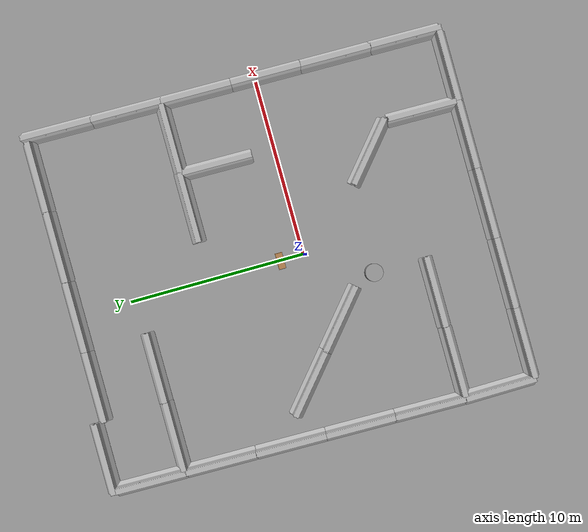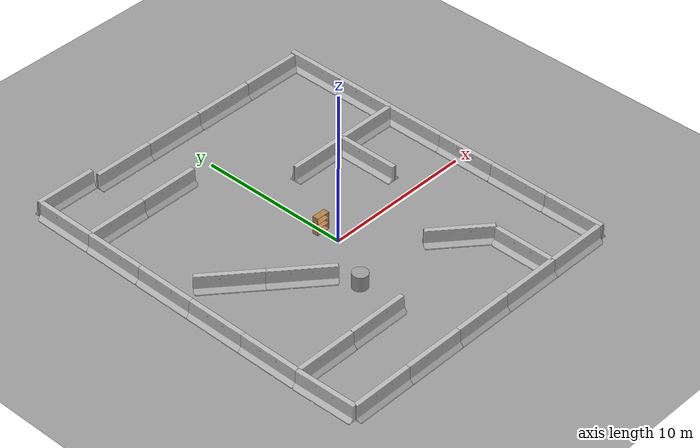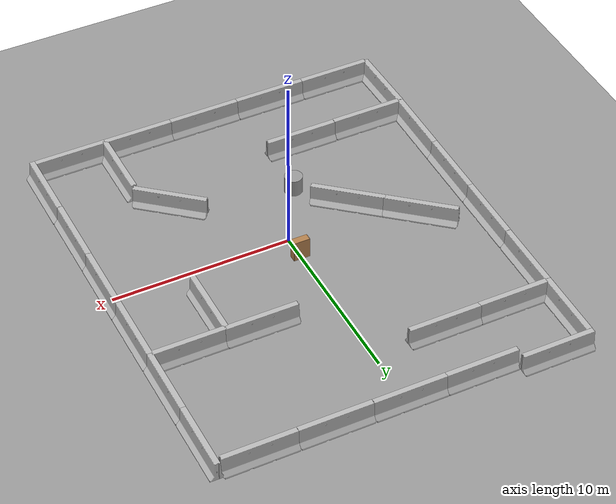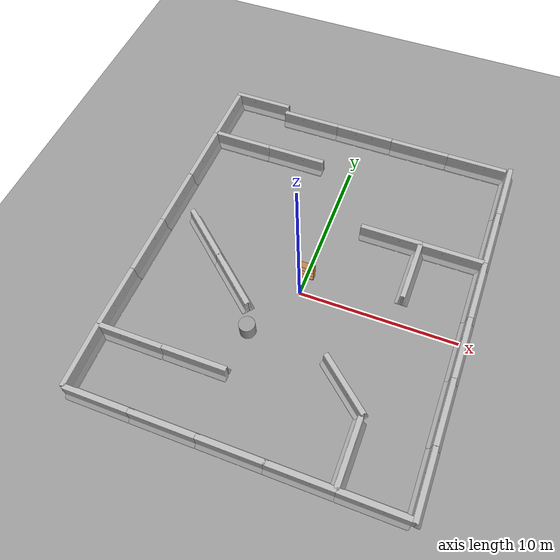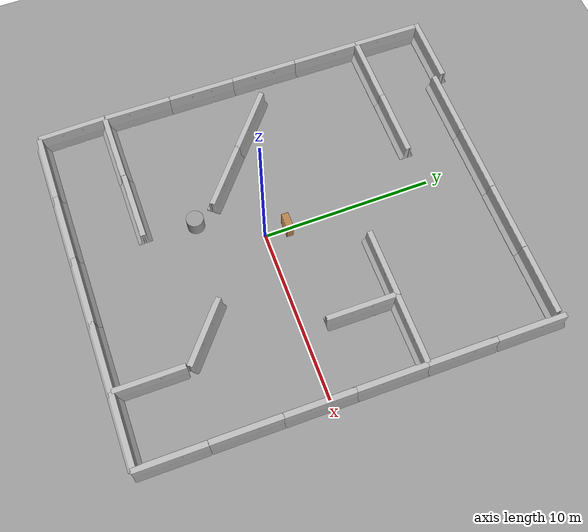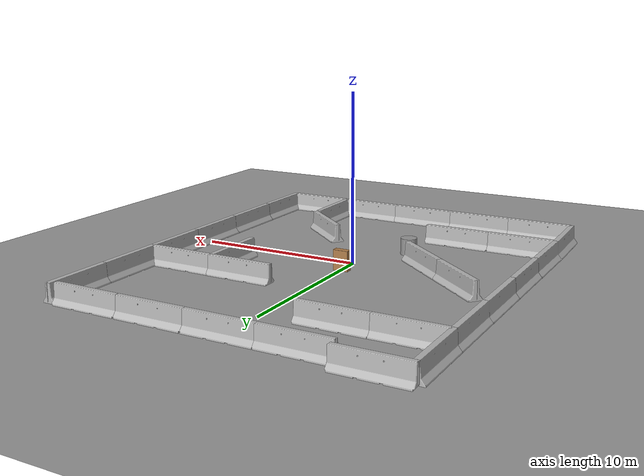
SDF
<sdf version="1.6">
 <world name="default">
  <light name="sun" type="directional">
   <pose>0 0 10 0 -0 0</pose>
   <diffuse>0.8 0.8 0.8 1</diffuse>
   <specular>0.2 0.2 0.2 1</specular>
   <attenuation>
    <range>1000</range>
    <constant>0.9</constant>
    <linear>0.01</linear>
    <quadratic>0.001</quadratic>
   </attenuation>
   <direction>0.5 0.1 -0.9</direction>
  </light>
  <scene><ambient>0.4 0.4 0.4 1</ambient><background>0.7 0.7 0.7 1</background><shadows>1</shadows></scene>
  <physics name="default_physics" default="0" type="ode">
   <max_step_size>0.01</max_step_size>
   <real_time_factor>1</real_time_factor>
   <real_time_update_rate>100</real_time_update_rate>
  </physics>
  <model name="bookshelf">
   <static>1</static>
   <link name="link">
    <inertial><mass>1</mass></inertial>
    <collision name="back">
     <pose>0 0.005 0.6 0 -0 0</pose>
     <geometry><box><size>0.9 0.01 1.2</size></box></geometry>
    </collision>
    <visual name="visual1">
     <pose>0 0.005 0.6 0 -0 0</pose>
     <geometry><box><size>0.9 0.01 1.2</size></box></geometry>
     <material>
      <script><uri>file://media/materials/scripts/gazebo.material</uri><name>Gazebo/Wood</name></script>
     </material>
    </visual>
    <collision name="left_side">
     <pose>0.45 -0.195 0.6 0 -0 0</pose>
     <geometry><box><size>0.02 0.4 1.2</size></box></geometry>
    </collision>
    <visual name="visual2">
     <pose>0.45 -0.195 0.6 0 -0 0</pose>
     <geometry><box><size>0.02 0.4 1.2</size></box></geometry>
     <material>
      <script><uri>file://media/materials/scripts/gazebo.material</uri><name>Gazebo/Wood</name></script>
     </material>
    </visual>
    <collision name="right_side">
     <pose>-0.45 -0.195 0.6 0 -0 0</pose>
     <geometry><box><size>0.02 0.4 1.2</size></box></geometry>
    </collision>
    <visual name="visual3">
     <pose>-0.45 -0.195 0.6 0 -0 0</pose>
     <geometry><box><size>0.02 0.4 1.2</size></box></geometry>
     <material>
      <script><uri>file://media/materials/scripts/gazebo.material</uri><name>Gazebo/Wood</name></script>
     </material>
    </visual>
    <collision name="bottom">
     <pose>0 -0.195 0.03 0 -0 0</pose>
     <geometry><box><size>0.88 0.4 0.06</size></box></geometry>
    </collision>
    <visual name="visual4">
     <pose>0 -0.195 0.03 0 -0 0</pose>
     <geometry><box><size>0.88 0.4 0.06</size></box></geometry>
     <material>
      <script><uri>file://media/materials/scripts/gazebo.material</uri><name>Gazebo/Wood</name></script>
     </material>
    </visual>
    <collision name="top">
     <pose>0 -0.195 1.19 0 -0 0</pose>
     <geometry><box><size>0.88 0.4 0.02</size></box></geometry>
    </collision>
    <visual name="visual5">
     <pose>0 -0.195 1.19 0 -0 0</pose>
     <geometry><box><size>0.88 0.4 0.02</size></box></geometry>
     <material>
      <script><uri>file://media/materials/scripts/gazebo.material</uri><name>Gazebo/Wood</name></script>
     </material>
    </visual>
    <collision name="low_shelf">
     <pose>0 -0.195 0.43 0 -0 0</pose>
     <geometry><box><size>0.88 0.4 0.02</size></box></geometry>
    </collision>
    <visual name="visual6">
     <pose>0 -0.195 0.43 0 -0 0</pose>
     <geometry><box><size>0.88 0.4 0.02</size></box></geometry>
     <material>
      <script><uri>file://media/materials/scripts/gazebo.material</uri><name>Gazebo/Wood</name></script>
     </material>
    </visual>
    <collision name="high_shelf">
     <pose>0 -0.195 0.8 0 -0 0</pose>
     <geometry><box><size>0.88 0.4 0.02</size></box></geometry>
    </collision>
    <visual name="visual7">
     <pose>0 -0.195 0.8 0 -0 0</pose>
     <geometry><box><size>0.88 0.4 0.02</size></box></geometry>
     <material>
      <script><uri>file://media/materials/scripts/gazebo.material</uri><name>Gazebo/Wood</name></script>
     </material>
    </visual>
    <velocity_decay><linear>0</linear><angular>0</angular></velocity_decay>
   </link>
   <pose>0 1.53026 0 0 -0 0</pose>
  </model>
  <model name="jersey_barrier">
   <static>1</static>
   <link name="link">
    <visual name="visual">
     <geometry>
      <mesh><uri>model://jersey_barrier/meshes/jersey_barrier.dae</uri><scale>1 1 1</scale></mesh>
     </geometry>
    </visual>
    <collision name="upright">
     <pose>0 0 0.5715 0 -0 0</pose>
     <geometry><box><size>4.06542 0.3063 1.143</size></box></geometry>
    </collision>
    <collision name="base">
     <pose>0 0 0.032258 0 -0 0</pose>
     <geometry><box><size>4.06542 0.8107 0.064516</size></box></geometry>
    </collision>
    <collision name="base2">
     <pose>0 0 0.1 0 -0 0</pose>
     <geometry><box><size>4.06542 0.65 0.1</size></box></geometry>
    </collision>
    <collision name="base3">
     <pose>0 0 0.2 0 -0 0</pose>
     <geometry><box><size>4.06542 0.5 0.1</size></box></geometry>
    </collision>
    <collision name="left-angle">
     <pose>0 -0.224 0.2401 0.9 -0 0</pose>
     <geometry><box><size>4.06542 0.5 0.064516</size></box></geometry>
    </collision>
    <collision name="right-angle">
     <pose>0 0.224 0.2401 -0.9 0 0</pose>
     <geometry><box><size>4.06542 0.5 0.064516</size></box></geometry>
    </collision>
    <velocity_decay><linear>0</linear><angular>0</angular></velocity_decay>
   </link>
   <pose>-4 -1 0 0 0 -0.7</pose>
  </model>
  <model name="ground_plane_0">
   <static>1</static>
   <link name="link">
    <collision name="collision">
     <geometry><plane><normal>0 0 1</normal><size>100 100</size></plane></geometry>
     <surface><friction><ode><mu>100</mu><mu2>50</mu2></ode></friction></surface>
    </collision>
    <visual name="visual">
     <cast_shadows>0</cast_shadows>
     <geometry><plane><normal>0 0 1</normal><size>100 100</size></plane></geometry>
     <material>
      <script><uri>file://media/materials/scripts/gazebo.material</uri><name>Gazebo/Grey</name></script>
     </material>
    </visual>
    <velocity_decay><linear>0</linear><angular>0</angular></velocity_decay>
   </link>
   <pose>0.497681 0 0 0 -0 0</pose>
  </model>
  <model name="unit_cylinder_1">
   <pose>-2 -3.4888 0.49912 0 -0 0</pose>
   <link name="link">
    <inertial>
     <mass>1</mass>
     <inertia><ixx>1</ixx><ixy>0</ixy><ixz>0</ixz><iyy>1</iyy><iyz>0</iyz><izz>1</izz></inertia>
    </inertial>
    <collision name="collision">
     <geometry><cylinder><radius>0.5</radius><length>1</length></cylinder></geometry>
    </collision>
    <visual name="visual">
     <geometry><cylinder><radius>0.5</radius><length>1</length></cylinder></geometry>
     <material>
      <script><uri>file://media/materials/scripts/gazebo.material</uri><name>Gazebo/Grey</name></script>
     </material>
    </visual>
    <velocity_decay><linear>0</linear><angular>0</angular></velocity_decay>
   </link>
   <static>0</static>
  </model>
  <gravity>0 0 -9.8</gravity>
  <magnetic_field>6e-06 2.3e-05 -4.2e-05</magnetic_field>
  <atmosphere type="adiabatic"/>
  <spherical_coordinates>
   <surface_model>EARTH_WGS84</surface_model>
   <latitude_deg>0</latitude_deg>
   <longitude_deg>0</longitude_deg>
   <elevation>0</elevation>
   <heading_deg>0</heading_deg>
  </spherical_coordinates>
  <model name="jersey_barrier_0">
   <static>1</static>
   <link name="link">
    <visual name="visual">
     <geometry>
      <mesh><uri>model://jersey_barrier/meshes/jersey_barrier.dae</uri><scale>1 1 1</scale></mesh>
     </geometry>
    </visual>
    <collision name="upright">
     <pose>0 0 0.5715 0 -0 0</pose>
     <geometry><box><size>4.06542 0.3063 1.143</size></box></geometry>
    </collision>
    <collision name="base">
     <pose>0 0 0.032258 0 -0 0</pose>
     <geometry><box><size>4.06542 0.8107 0.064516</size></box></geometry>
    </collision>
    <collision name="base2">
     <pose>0 0 0.1 0 -0 0</pose>
     <geometry><box><size>4.06542 0.65 0.1</size></box></geometry>
    </collision>
    <collision name="base3">
     <pose>0 0 0.2 0 -0 0</pose>
     <geometry><box><size>4.06542 0.5 0.1</size></box></geometry>
    </collision>
    <collision name="left-angle">
     <pose>0 -0.224 0.2401 0.9 -0 0</pose>
     <geometry><box><size>4.06542 0.5 0.064516</size></box></geometry>
    </collision>
    <collision name="right-angle">
     <pose>0 0.224 0.2401 -0.9 0 0</pose>
     <geometry><box><size>4.06542 0.5 0.064516</size></box></geometry>
    </collision>
   </link>
   <pose>0.044913 -10.4917 0 0 -0 0</pose>
  </model>
  <model name="jersey_barrier_1">
   <static>1</static>
   <link name="link">
    <visual name="visual">
     <geometry>
      <mesh><uri>model://jersey_barrier/meshes/jersey_barrier.dae</uri><scale>1 1 1</scale></mesh>
     </geometry>
    </visual>
    <collision name="upright">
     <pose>0 0 0.5715 0 -0 0</pose>
     <geometry><box><size>4.06542 0.3063 1.143</size></box></geometry>
    </collision>
    <collision name="base">
     <pose>0 0 0.032258 0 -0 0</pose>
     <geometry><box><size>4.06542 0.8107 0.064516</size></box></geometry>
    </collision>
    <collision name="base2">
     <pose>0 0 0.1 0 -0 0</pose>
     <geometry><box><size>4.06542 0.65 0.1</size></box></geometry>
    </collision>
    <collision name="base3">
     <pose>0 0 0.2 0 -0 0</pose>
     <geometry><box><size>4.06542 0.5 0.1</size></box></geometry>
    </collision>
    <collision name="left-angle">
     <pose>0 -0.224 0.2401 0.9 -0 0</pose>
     <geometry><box><size>4.06542 0.5 0.064516</size></box></geometry>
    </collision>
    <collision name="right-angle">
     <pose>0 0.224 0.2401 -0.9 0 0</pose>
     <geometry><box><size>4.06542 0.5 0.064516</size></box></geometry>
    </collision>
   </link>
   <pose>3.93437 -10.4926 0 0 -0 0</pose>
  </model>
  <model name="jersey_barrier_1_clone">
   <static>1</static>
   <link name="link">
    <visual name="visual">
     <geometry>
      <mesh><uri>model://jersey_barrier/meshes/jersey_barrier.dae</uri><scale>1 1 1</scale></mesh>
     </geometry>
    </visual>
    <collision name="upright">
     <pose>0 0 0.5715 0 -0 0</pose>
     <geometry><box><size>4.06542 0.3063 1.143</size></box></geometry>
    </collision>
    <collision name="base">
     <pose>0 0 0.032258 0 -0 0</pose>
     <geometry><box><size>4.06542 0.8107 0.064516</size></box></geometry>
    </collision>
    <collision name="base2">
     <pose>0 0 0.1 0 -0 0</pose>
     <geometry><box><size>4.06542 0.65 0.1</size></box></geometry>
    </collision>
    <collision name="base3">
     <pose>0 0 0.2 0 -0 0</pose>
     <geometry><box><size>4.06542 0.5 0.1</size></box></geometry>
    </collision>
    <collision name="left-angle">
     <pose>0 -0.224 0.2401 0.9 -0 0</pose>
     <geometry><box><size>4.06542 0.5 0.064516</size></box></geometry>
    </collision>
    <collision name="right-angle">
     <pose>0 0.224 0.2401 -0.9 0 0</pose>
     <geometry><box><size>4.06542 0.5 0.064516</size></box></geometry>
    </collision>
   </link>
   <pose>7.93297 -10.4987 0 0 -0 0</pose>
  </model>
  <model name="jersey_barrier_1_clone_0">
   <static>1</static>
   <link name="link">
    <visual name="visual">
     <geometry>
      <mesh><uri>model://jersey_barrier/meshes/jersey_barrier.dae</uri><scale>1 1 1</scale></mesh>
     </geometry>
    </visual>
    <collision name="upright">
     <pose>0 0 0.5715 0 -0 0</pose>
     <geometry><box><size>4.06542 0.3063 1.143</size></box></geometry>
    </collision>
    <collision name="base">
     <pose>0 0 0.032258 0 -0 0</pose>
     <geometry><box><size>4.06542 0.8107 0.064516</size></box></geometry>
    </collision>
    <collision name="base2">
     <pose>0 0 0.1 0 -0 0</pose>
     <geometry><box><size>4.06542 0.65 0.1</size></box></geometry>
    </collision>
    <collision name="base3">
     <pose>0 0 0.2 0 -0 0</pose>
     <geometry><box><size>4.06542 0.5 0.1</size></box></geometry>
    </collision>
    <collision name="left-angle">
     <pose>0 -0.224 0.2401 0.9 -0 0</pose>
     <geometry><box><size>4.06542 0.5 0.064516</size></box></geometry>
    </collision>
    <collision name="right-angle">
     <pose>0 0.224 0.2401 -0.9 0 0</pose>
     <geometry><box><size>4.06542 0.5 0.064516</size></box></geometry>
    </collision>
   </link>
   <pose>-3.96775 -10.4974 0 0 -0 0</pose>
  </model>
  <model name="jersey_barrier_1_clone_1">
   <static>1</static>
   <link name="link">
    <visual name="visual">
     <geometry>
      <mesh><uri>model://jersey_barrier/meshes/jersey_barrier.dae</uri><scale>1 1 1</scale></mesh>
     </geometry>
    </visual>
    <collision name="upright">
     <pose>0 0 0.5715 0 -0 0</pose>
     <geometry><box><size>4.06542 0.3063 1.143</size></box></geometry>
    </collision>
    <collision name="base">
     <pose>0 0 0.032258 0 -0 0</pose>
     <geometry><box><size>4.06542 0.8107 0.064516</size></box></geometry>
    </collision>
    <collision name="base2">
     <pose>0 0 0.1 0 -0 0</pose>
     <geometry><box><size>4.06542 0.65 0.1</size></box></geometry>
    </collision>
    <collision name="base3">
     <pose>0 0 0.2 0 -0 0</pose>
     <geometry><box><size>4.06542 0.5 0.1</size></box></geometry>
    </collision>
    <collision name="left-angle">
     <pose>0 -0.224 0.2401 0.9 -0 0</pose>
     <geometry><box><size>4.06542 0.5 0.064516</size></box></geometry>
    </collision>
    <collision name="right-angle">
     <pose>0 0.224 0.2401 -0.9 0 0</pose>
     <geometry><box><size>4.06542 0.5 0.064516</size></box></geometry>
    </collision>
   </link>
   <pose>-7.97176 -10.4956 0 0 -0 0</pose>
  </model>
  <model name="jersey_barrier_1_clone_2">
   <static>1</static>
   <link name="link">
    <visual name="visual">
     <geometry>
      <mesh><uri>model://jersey_barrier/meshes/jersey_barrier.dae</uri><scale>1 1 1</scale></mesh>
     </geometry>
    </visual>
    <collision name="upright">
     <pose>0 0 0.5715 0 -0 0</pose>
     <geometry><box><size>4.06542 0.3063 1.143</size></box></geometry>
    </collision>
    <collision name="base">
     <pose>0 0 0.032258 0 -0 0</pose>
     <geometry><box><size>4.06542 0.8107 0.064516</size></box></geometry>
    </collision>
    <collision name="base2">
     <pose>0 0 0.1 0 -0 0</pose>
     <geometry><box><size>4.06542 0.65 0.1</size></box></geometry>
    </collision>
    <collision name="base3">
     <pose>0 0 0.2 0 -0 0</pose>
     <geometry><box><size>4.06542 0.5 0.1</size></box></geometry>
    </collision>
    <collision name="left-angle">
     <pose>0 -0.224 0.2401 0.9 -0 0</pose>
     <geometry><box><size>4.06542 0.5 0.064516</size></box></geometry>
    </collision>
    <collision name="right-angle">
     <pose>0 0.224 0.2401 -0.9 0 0</pose>
     <geometry><box><size>4.06542 0.5 0.064516</size></box></geometry>
    </collision>
   </link>
   <pose>-10.0738 -8.515 0 0 0 -1.55445</pose>
  </model>
  <model name="jersey_barrier_1_clone_2_clone">
   <static>1</static>
   <link name="link">
    <visual name="visual">
     <geometry>
      <mesh><uri>model://jersey_barrier/meshes/jersey_barrier.dae</uri><scale>1 1 1</scale></mesh>
     </geometry>
    </visual>
    <collision name="upright">
     <pose>0 0 0.5715 0 -0 0</pose>
     <geometry><box><size>4.06542 0.3063 1.143</size></box></geometry>
    </collision>
    <collision name="base">
     <pose>0 0 0.032258 0 -0 0</pose>
     <geometry><box><size>4.06542 0.8107 0.064516</size></box></geometry>
    </collision>
    <collision name="base2">
     <pose>0 0 0.1 0 -0 0</pose>
     <geometry><box><size>4.06542 0.65 0.1</size></box></geometry>
    </collision>
    <collision name="base3">
     <pose>0 0 0.2 0 -0 0</pose>
     <geometry><box><size>4.06542 0.5 0.1</size></box></geometry>
    </collision>
    <collision name="left-angle">
     <pose>0 -0.224 0.2401 0.9 -0 0</pose>
     <geometry><box><size>4.06542 0.5 0.064516</size></box></geometry>
    </collision>
    <collision name="right-angle">
     <pose>0 0.224 0.2401 -0.9 0 0</pose>
     <geometry><box><size>4.06542 0.5 0.064516</size></box></geometry>
    </collision>
   </link>
   <pose>-10.0721 -4.47903 0 0 0 -1.5814</pose>
  </model>
  <model name="jersey_barrier_1_clone_2_clone_0">
   <static>1</static>
   <link name="link">
    <visual name="visual">
     <geometry>
      <mesh><uri>model://jersey_barrier/meshes/jersey_barrier.dae</uri><scale>1 1 1</scale></mesh>
     </geometry>
    </visual>
    <collision name="upright">
     <pose>0 0 0.5715 0 -0 0</pose>
     <geometry><box><size>4.06542 0.3063 1.143</size></box></geometry>
    </collision>
    <collision name="base">
     <pose>0 0 0.032258 0 -0 0</pose>
     <geometry><box><size>4.06542 0.8107 0.064516</size></box></geometry>
    </collision>
    <collision name="base2">
     <pose>0 0 0.1 0 -0 0</pose>
     <geometry><box><size>4.06542 0.65 0.1</size></box></geometry>
    </collision>
    <collision name="base3">
     <pose>0 0 0.2 0 -0 0</pose>
     <geometry><box><size>4.06542 0.5 0.1</size></box></geometry>
    </collision>
    <collision name="left-angle">
     <pose>0 -0.224 0.2401 0.9 -0 0</pose>
     <geometry><box><size>4.06542 0.5 0.064516</size></box></geometry>
    </collision>
    <collision name="right-angle">
     <pose>0 0.224 0.2401 -0.9 0 0</pose>
     <geometry><box><size>4.06542 0.5 0.064516</size></box></geometry>
    </collision>
   </link>
   <pose>-10.0264 -0.525115 0 0 0 -1.5814</pose>
  </model>
  <model name="jersey_barrier_1_clone_2_clone_1">
   <static>1</static>
   <link name="link">
    <visual name="visual">
     <geometry>
      <mesh><uri>model://jersey_barrier/meshes/jersey_barrier.dae</uri><scale>1 1 1</scale></mesh>
     </geometry>
    </visual>
    <collision name="upright">
     <pose>0 0 0.5715 0 -0 0</pose>
     <geometry><box><size>4.06542 0.3063 1.143</size></box></geometry>
    </collision>
    <collision name="base">
     <pose>0 0 0.032258 0 -0 0</pose>
     <geometry><box><size>4.06542 0.8107 0.064516</size></box></geometry>
    </collision>
    <collision name="base2">
     <pose>0 0 0.1 0 -0 0</pose>
     <geometry><box><size>4.06542 0.65 0.1</size></box></geometry>
    </collision>
    <collision name="base3">
     <pose>0 0 0.2 0 -0 0</pose>
     <geometry><box><size>4.06542 0.5 0.1</size></box></geometry>
    </collision>
    <collision name="left-angle">
     <pose>0 -0.224 0.2401 0.9 -0 0</pose>
     <geometry><box><size>4.06542 0.5 0.064516</size></box></geometry>
    </collision>
    <collision name="right-angle">
     <pose>0 0.224 0.2401 -0.9 0 0</pose>
     <geometry><box><size>4.06542 0.5 0.064516</size></box></geometry>
    </collision>
   </link>
   <pose>-9.98287 3.46467 0 0 0 -1.5814</pose>
  </model>
  <model name="jersey_barrier_1_clone_2_clone_2">
   <static>1</static>
   <link name="link">
    <visual name="visual">
     <geometry>
      <mesh><uri>model://jersey_barrier/meshes/jersey_barrier.dae</uri><scale>1 1 1</scale></mesh>
     </geometry>
    </visual>
    <collision name="upright">
     <pose>0 0 0.5715 0 -0 0</pose>
     <geometry><box><size>4.06542 0.3063 1.143</size></box></geometry>
    </collision>
    <collision name="base">
     <pose>0 0 0.032258 0 -0 0</pose>
     <geometry><box><size>4.06542 0.8107 0.064516</size></box></geometry>
    </collision>
    <collision name="base2">
     <pose>0 0 0.1 0 -0 0</pose>
     <geometry><box><size>4.06542 0.65 0.1</size></box></geometry>
    </collision>
    <collision name="base3">
     <pose>0 0 0.2 0 -0 0</pose>
     <geometry><box><size>4.06542 0.5 0.1</size></box></geometry>
    </collision>
    <collision name="left-angle">
     <pose>0 -0.224 0.2401 0.9 -0 0</pose>
     <geometry><box><size>4.06542 0.5 0.064516</size></box></geometry>
    </collision>
    <collision name="right-angle">
     <pose>0 0.224 0.2401 -0.9 0 0</pose>
     <geometry><box><size>4.06542 0.5 0.064516</size></box></geometry>
    </collision>
   </link>
   <pose>-9.93332 7.49122 0 0 0 -1.5814</pose>
  </model>
  <model name="jersey_barrier_1_clone_2_clone_3">
   <static>1</static>
   <link name="link">
    <visual name="visual">
     <geometry>
      <mesh><uri>model://jersey_barrier/meshes/jersey_barrier.dae</uri><scale>1 1 1</scale></mesh>
     </geometry>
    </visual>
    <collision name="upright">
     <pose>0 0 0.5715 0 -0 0</pose>
     <geometry><box><size>4.06542 0.3063 1.143</size></box></geometry>
    </collision>
    <collision name="base">
     <pose>0 0 0.032258 0 -0 0</pose>
     <geometry><box><size>4.06542 0.8107 0.064516</size></box></geometry>
    </collision>
    <collision name="base2">
     <pose>0 0 0.1 0 -0 0</pose>
     <geometry><box><size>4.06542 0.65 0.1</size></box></geometry>
    </collision>
    <collision name="base3">
     <pose>0 0 0.2 0 -0 0</pose>
     <geometry><box><size>4.06542 0.5 0.1</size></box></geometry>
    </collision>
    <collision name="left-angle">
     <pose>0 -0.224 0.2401 0.9 -0 0</pose>
     <geometry><box><size>4.06542 0.5 0.064516</size></box></geometry>
    </collision>
    <collision name="right-angle">
     <pose>0 0.224 0.2401 -0.9 0 0</pose>
     <geometry><box><size>4.06542 0.5 0.064516</size></box></geometry>
    </collision>
   </link>
   <pose>-9.89225 11.5087 0 0 0 -1.5814</pose>
  </model>
  <model name="jersey_barrier_1_clone_1_clone">
   <static>1</static>
   <link name="link">
    <visual name="visual">
     <geometry>
      <mesh><uri>model://jersey_barrier/meshes/jersey_barrier.dae</uri><scale>1 1 1</scale></mesh>
     </geometry>
    </visual>
    <collision name="upright">
     <pose>0 0 0.5715 0 -0 0</pose>
     <geometry><box><size>4.06542 0.3063 1.143</size></box></geometry>
    </collision>
    <collision name="base">
     <pose>0 0 0.032258 0 -0 0</pose>
     <geometry><box><size>4.06542 0.8107 0.064516</size></box></geometry>
    </collision>
    <collision name="base2">
     <pose>0 0 0.1 0 -0 0</pose>
     <geometry><box><size>4.06542 0.65 0.1</size></box></geometry>
    </collision>
    <collision name="base3">
     <pose>0 0 0.2 0 -0 0</pose>
     <geometry><box><size>4.06542 0.5 0.1</size></box></geometry>
    </collision>
    <collision name="left-angle">
     <pose>0 -0.224 0.2401 0.9 -0 0</pose>
     <geometry><box><size>4.06542 0.5 0.064516</size></box></geometry>
    </collision>
    <collision name="right-angle">
     <pose>0 0.224 0.2401 -0.9 0 0</pose>
     <geometry><box><size>4.06542 0.5 0.064516</size></box></geometry>
    </collision>
   </link>
   <pose>-7.98912 13.6624 0 0 -0 0</pose>
  </model>
  <model name="jersey_barrier_1_clone_1_clone_clone">
   <static>1</static>
   <link name="link">
    <visual name="visual">
     <geometry>
      <mesh><uri>model://jersey_barrier/meshes/jersey_barrier.dae</uri><scale>1 1 1</scale></mesh>
     </geometry>
    </visual>
    <collision name="upright">
     <pose>0 0 0.5715 0 -0 0</pose>
     <geometry><box><size>4.06542 0.3063 1.143</size></box></geometry>
    </collision>
    <collision name="base">
     <pose>0 0 0.032258 0 -0 0</pose>
     <geometry><box><size>4.06542 0.8107 0.064516</size></box></geometry>
    </collision>
    <collision name="base2">
     <pose>0 0 0.1 0 -0 0</pose>
     <geometry><box><size>4.06542 0.65 0.1</size></box></geometry>
    </collision>
    <collision name="base3">
     <pose>0 0 0.2 0 -0 0</pose>
     <geometry><box><size>4.06542 0.5 0.1</size></box></geometry>
    </collision>
    <collision name="left-angle">
     <pose>0 -0.224 0.2401 0.9 -0 0</pose>
     <geometry><box><size>4.06542 0.5 0.064516</size></box></geometry>
    </collision>
    <collision name="right-angle">
     <pose>0 0.224 0.2401 -0.9 0 0</pose>
     <geometry><box><size>4.06542 0.5 0.064516</size></box></geometry>
    </collision>
   </link>
   <pose>-3.99277 13.101 0 0 -0 0</pose>
  </model>
  <model name="jersey_barrier_1_clone_1_clone_clone_0">
   <static>1</static>
   <link name="link">
    <visual name="visual">
     <geometry>
      <mesh><uri>model://jersey_barrier/meshes/jersey_barrier.dae</uri><scale>1 1 1</scale></mesh>
     </geometry>
    </visual>
    <collision name="upright">
     <pose>0 0 0.5715 0 -0 0</pose>
     <geometry><box><size>4.06542 0.3063 1.143</size></box></geometry>
    </collision>
    <collision name="base">
     <pose>0 0 0.032258 0 -0 0</pose>
     <geometry><box><size>4.06542 0.8107 0.064516</size></box></geometry>
    </collision>
    <collision name="base2">
     <pose>0 0 0.1 0 -0 0</pose>
     <geometry><box><size>4.06542 0.65 0.1</size></box></geometry>
    </collision>
    <collision name="base3">
     <pose>0 0 0.2 0 -0 0</pose>
     <geometry><box><size>4.06542 0.5 0.1</size></box></geometry>
    </collision>
    <collision name="left-angle">
     <pose>0 -0.224 0.2401 0.9 -0 0</pose>
     <geometry><box><size>4.06542 0.5 0.064516</size></box></geometry>
    </collision>
    <collision name="right-angle">
     <pose>0 0.224 0.2401 -0.9 0 0</pose>
     <geometry><box><size>4.06542 0.5 0.064516</size></box></geometry>
    </collision>
   </link>
   <pose>-0.015433 13.099 0 0 -0 0</pose>
  </model>
  <model name="jersey_barrier_1_clone_1_clone_clone_1">
   <static>1</static>
   <link name="link">
    <visual name="visual">
     <geometry>
      <mesh><uri>model://jersey_barrier/meshes/jersey_barrier.dae</uri><scale>1 1 1</scale></mesh>
     </geometry>
    </visual>
    <collision name="upright">
     <pose>0 0 0.5715 0 -0 0</pose>
     <geometry><box><size>4.06542 0.3063 1.143</size></box></geometry>
    </collision>
    <collision name="base">
     <pose>0 0 0.032258 0 -0 0</pose>
     <geometry><box><size>4.06542 0.8107 0.064516</size></box></geometry>
    </collision>
    <collision name="base2">
     <pose>0 0 0.1 0 -0 0</pose>
     <geometry><box><size>4.06542 0.65 0.1</size></box></geometry>
    </collision>
    <collision name="base3">
     <pose>0 0 0.2 0 -0 0</pose>
     <geometry><box><size>4.06542 0.5 0.1</size></box></geometry>
    </collision>
    <collision name="left-angle">
     <pose>0 -0.224 0.2401 0.9 -0 0</pose>
     <geometry><box><size>4.06542 0.5 0.064516</size></box></geometry>
    </collision>
    <collision name="right-angle">
     <pose>0 0.224 0.2401 -0.9 0 0</pose>
     <geometry><box><size>4.06542 0.5 0.064516</size></box></geometry>
    </collision>
   </link>
   <pose>4.01919 13.0865 0 0 -0 0</pose>
  </model>
  <model name="jersey_barrier_1_clone_1_clone_clone_2">
   <static>1</static>
   <link name="link">
    <visual name="visual">
     <geometry>
      <mesh><uri>model://jersey_barrier/meshes/jersey_barrier.dae</uri><scale>1 1 1</scale></mesh>
     </geometry>
    </visual>
    <collision name="upright">
     <pose>0 0 0.5715 0 -0 0</pose>
     <geometry><box><size>4.06542 0.3063 1.143</size></box></geometry>
    </collision>
    <collision name="base">
     <pose>0 0 0.032258 0 -0 0</pose>
     <geometry><box><size>4.06542 0.8107 0.064516</size></box></geometry>
    </collision>
    <collision name="base2">
     <pose>0 0 0.1 0 -0 0</pose>
     <geometry><box><size>4.06542 0.65 0.1</size></box></geometry>
    </collision>
    <collision name="base3">
     <pose>0 0 0.2 0 -0 0</pose>
     <geometry><box><size>4.06542 0.5 0.1</size></box></geometry>
    </collision>
    <collision name="left-angle">
     <pose>0 -0.224 0.2401 0.9 -0 0</pose>
     <geometry><box><size>4.06542 0.5 0.064516</size></box></geometry>
    </collision>
    <collision name="right-angle">
     <pose>0 0.224 0.2401 -0.9 0 0</pose>
     <geometry><box><size>4.06542 0.5 0.064516</size></box></geometry>
    </collision>
   </link>
   <pose>8.04761 13.0869 0 0 -0 0</pose>
  </model>
  <model name="jersey_barrier_1_clone_2_clone_3_clone">
   <static>1</static>
   <link name="link">
    <visual name="visual">
     <geometry>
      <mesh><uri>model://jersey_barrier/meshes/jersey_barrier.dae</uri><scale>1 1 1</scale></mesh>
     </geometry>
    </visual>
    <collision name="upright">
     <pose>0 0 0.5715 0 -0 0</pose>
     <geometry><box><size>4.06542 0.3063 1.143</size></box></geometry>
    </collision>
    <collision name="base">
     <pose>0 0 0.032258 0 -0 0</pose>
     <geometry><box><size>4.06542 0.8107 0.064516</size></box></geometry>
    </collision>
    <collision name="base2">
     <pose>0 0 0.1 0 -0 0</pose>
     <geometry><box><size>4.06542 0.65 0.1</size></box></geometry>
    </collision>
    <collision name="base3">
     <pose>0 0 0.2 0 -0 0</pose>
     <geometry><box><size>4.06542 0.5 0.1</size></box></geometry>
    </collision>
    <collision name="left-angle">
     <pose>0 -0.224 0.2401 0.9 -0 0</pose>
     <geometry><box><size>4.06542 0.5 0.064516</size></box></geometry>
    </collision>
    <collision name="right-angle">
     <pose>0 0.224 0.2401 -0.9 0 0</pose>
     <geometry><box><size>4.06542 0.5 0.064516</size></box></geometry>
    </collision>
   </link>
   <pose>10.1058 -8.62708 0 0 0 -1.5814</pose>
  </model>
  <model name="jersey_barrier_1_clone_2_clone_3_clone_0">
   <static>1</static>
   <link name="link">
    <visual name="visual">
     <geometry>
      <mesh><uri>model://jersey_barrier/meshes/jersey_barrier.dae</uri><scale>1 1 1</scale></mesh>
     </geometry>
    </visual>
    <collision name="upright">
     <pose>0 0 0.5715 0 -0 0</pose>
     <geometry><box><size>4.06542 0.3063 1.143</size></box></geometry>
    </collision>
    <collision name="base">
     <pose>0 0 0.032258 0 -0 0</pose>
     <geometry><box><size>4.06542 0.8107 0.064516</size></box></geometry>
    </collision>
    <collision name="base2">
     <pose>0 0 0.1 0 -0 0</pose>
     <geometry><box><size>4.06542 0.65 0.1</size></box></geometry>
    </collision>
    <collision name="base3">
     <pose>0 0 0.2 0 -0 0</pose>
     <geometry><box><size>4.06542 0.5 0.1</size></box></geometry>
    </collision>
    <collision name="left-angle">
     <pose>0 -0.224 0.2401 0.9 -0 0</pose>
     <geometry><box><size>4.06542 0.5 0.064516</size></box></geometry>
    </collision>
    <collision name="right-angle">
     <pose>0 0.224 0.2401 -0.9 0 0</pose>
     <geometry><box><size>4.06542 0.5 0.064516</size></box></geometry>
    </collision>
   </link>
   <pose>10.1381 -4.59921 0 0 0 -1.5814</pose>
  </model>
  <model name="jersey_barrier_1_clone_2_clone_3_clone_1">
   <static>1</static>
   <link name="link">
    <visual name="visual">
     <geometry>
      <mesh><uri>model://jersey_barrier/meshes/jersey_barrier.dae</uri><scale>1 1 1</scale></mesh>
     </geometry>
    </visual>
    <collision name="upright">
     <pose>0 0 0.5715 0 -0 0</pose>
     <geometry><box><size>4.06542 0.3063 1.143</size></box></geometry>
    </collision>
    <collision name="base">
     <pose>0 0 0.032258 0 -0 0</pose>
     <geometry><box><size>4.06542 0.8107 0.064516</size></box></geometry>
    </collision>
    <collision name="base2">
     <pose>0 0 0.1 0 -0 0</pose>
     <geometry><box><size>4.06542 0.65 0.1</size></box></geometry>
    </collision>
    <collision name="base3">
     <pose>0 0 0.2 0 -0 0</pose>
     <geometry><box><size>4.06542 0.5 0.1</size></box></geometry>
    </collision>
    <collision name="left-angle">
     <pose>0 -0.224 0.2401 0.9 -0 0</pose>
     <geometry><box><size>4.06542 0.5 0.064516</size></box></geometry>
    </collision>
    <collision name="right-angle">
     <pose>0 0.224 0.2401 -0.9 0 0</pose>
     <geometry><box><size>4.06542 0.5 0.064516</size></box></geometry>
    </collision>
   </link>
   <pose>10.187 -0.6286 0 0 0 -1.5814</pose>
  </model>
  <model name="jersey_barrier_1_clone_2_clone_3_clone_2">
   <static>1</static>
   <link name="link">
    <visual name="visual">
     <geometry>
      <mesh><uri>model://jersey_barrier/meshes/jersey_barrier.dae</uri><scale>1 1 1</scale></mesh>
     </geometry>
    </visual>
    <collision name="upright">
     <pose>0 0 0.5715 0 -0 0</pose>
     <geometry><box><size>4.06542 0.3063 1.143</size></box></geometry>
    </collision>
    <collision name="base">
     <pose>0 0 0.032258 0 -0 0</pose>
     <geometry><box><size>4.06542 0.8107 0.064516</size></box></geometry>
    </collision>
    <collision name="base2">
     <pose>0 0 0.1 0 -0 0</pose>
     <geometry><box><size>4.06542 0.65 0.1</size></box></geometry>
    </collision>
    <collision name="base3">
     <pose>0 0 0.2 0 -0 0</pose>
     <geometry><box><size>4.06542 0.5 0.1</size></box></geometry>
    </collision>
    <collision name="left-angle">
     <pose>0 -0.224 0.2401 0.9 -0 0</pose>
     <geometry><box><size>4.06542 0.5 0.064516</size></box></geometry>
    </collision>
    <collision name="right-angle">
     <pose>0 0.224 0.2401 -0.9 0 0</pose>
     <geometry><box><size>4.06542 0.5 0.064516</size></box></geometry>
    </collision>
   </link>
   <pose>10.227 3.36981 0 0 0 -1.5814</pose>
  </model>
  <model name="jersey_barrier_1_clone_2_clone_3_clone_3">
   <static>1</static>
   <link name="link">
    <visual name="visual">
     <geometry>
      <mesh><uri>model://jersey_barrier/meshes/jersey_barrier.dae</uri><scale>1 1 1</scale></mesh>
     </geometry>
    </visual>
    <collision name="upright">
     <pose>0 0 0.5715 0 -0 0</pose>
     <geometry><box><size>4.06542 0.3063 1.143</size></box></geometry>
    </collision>
    <collision name="base">
     <pose>0 0 0.032258 0 -0 0</pose>
     <geometry><box><size>4.06542 0.8107 0.064516</size></box></geometry>
    </collision>
    <collision name="base2">
     <pose>0 0 0.1 0 -0 0</pose>
     <geometry><box><size>4.06542 0.65 0.1</size></box></geometry>
    </collision>
    <collision name="base3">
     <pose>0 0 0.2 0 -0 0</pose>
     <geometry><box><size>4.06542 0.5 0.1</size></box></geometry>
    </collision>
    <collision name="left-angle">
     <pose>0 -0.224 0.2401 0.9 -0 0</pose>
     <geometry><box><size>4.06542 0.5 0.064516</size></box></geometry>
    </collision>
    <collision name="right-angle">
     <pose>0 0.224 0.2401 -0.9 0 0</pose>
     <geometry><box><size>4.06542 0.5 0.064516</size></box></geometry>
    </collision>
   </link>
   <pose>10.2688 7.37467 0 0 0 -1.5814</pose>
  </model>
  <model name="jersey_barrier_1_clone_2_clone_3_clone_4">
   <static>1</static>
   <link name="link">
    <visual name="visual">
     <geometry>
      <mesh><uri>model://jersey_barrier/meshes/jersey_barrier.dae</uri><scale>1 1 1</scale></mesh>
     </geometry>
    </visual>
    <collision name="upright">
     <pose>0 0 0.5715 0 -0 0</pose>
     <geometry><box><size>4.06542 0.3063 1.143</size></box></geometry>
    </collision>
    <collision name="base">
     <pose>0 0 0.032258 0 -0 0</pose>
     <geometry><box><size>4.06542 0.8107 0.064516</size></box></geometry>
    </collision>
    <collision name="base2">
     <pose>0 0 0.1 0 -0 0</pose>
     <geometry><box><size>4.06542 0.65 0.1</size></box></geometry>
    </collision>
    <collision name="base3">
     <pose>0 0 0.2 0 -0 0</pose>
     <geometry><box><size>4.06542 0.5 0.1</size></box></geometry>
    </collision>
    <collision name="left-angle">
     <pose>0 -0.224 0.2401 0.9 -0 0</pose>
     <geometry><box><size>4.06542 0.5 0.064516</size></box></geometry>
    </collision>
    <collision name="right-angle">
     <pose>0 0.224 0.2401 -0.9 0 0</pose>
     <geometry><box><size>4.06542 0.5 0.064516</size></box></geometry>
    </collision>
   </link>
   <pose>10.3147 11.3743 0 0 0 -1.5814</pose>
  </model>
  <model name="jersey_barrier_1_clone_1_clone_clone_2_clone">
   <static>1</static>
   <link name="link">
    <visual name="visual">
     <geometry>
      <mesh><uri>model://jersey_barrier/meshes/jersey_barrier.dae</uri><scale>1 1 1</scale></mesh>
     </geometry>
    </visual>
    <collision name="upright">
     <pose>0 0 0.5715 0 -0 0</pose>
     <geometry><box><size>4.06542 0.3063 1.143</size></box></geometry>
    </collision>
    <collision name="base">
     <pose>0 0 0.032258 0 -0 0</pose>
     <geometry><box><size>4.06542 0.8107 0.064516</size></box></geometry>
    </collision>
    <collision name="base2">
     <pose>0 0 0.1 0 -0 0</pose>
     <geometry><box><size>4.06542 0.65 0.1</size></box></geometry>
    </collision>
    <collision name="base3">
     <pose>0 0 0.2 0 -0 0</pose>
     <geometry><box><size>4.06542 0.5 0.1</size></box></geometry>
    </collision>
    <collision name="left-angle">
     <pose>0 -0.224 0.2401 0.9 -0 0</pose>
     <geometry><box><size>4.06542 0.5 0.064516</size></box></geometry>
    </collision>
    <collision name="right-angle">
     <pose>0 0.224 0.2401 -0.9 0 0</pose>
     <geometry><box><size>4.06542 0.5 0.064516</size></box></geometry>
    </collision>
   </link>
   <pose>-7.9795 -6.51878 0 0 -0 0</pose>
  </model>
  <model name="jersey_barrier_1_clone_1_clone_clone_2_clone_0">
   <static>1</static>
   <link name="link">
    <visual name="visual">
     <geometry>
      <mesh><uri>model://jersey_barrier/meshes/jersey_barrier.dae</uri><scale>1 1 1</scale></mesh>
     </geometry>
    </visual>
    <collision name="upright">
     <pose>0 0 0.5715 0 -0 0</pose>
     <geometry><box><size>4.06542 0.3063 1.143</size></box></geometry>
    </collision>
    <collision name="base">
     <pose>0 0 0.032258 0 -0 0</pose>
     <geometry><box><size>4.06542 0.8107 0.064516</size></box></geometry>
    </collision>
    <collision name="base2">
     <pose>0 0 0.1 0 -0 0</pose>
     <geometry><box><size>4.06542 0.65 0.1</size></box></geometry>
    </collision>
    <collision name="base3">
     <pose>0 0 0.2 0 -0 0</pose>
     <geometry><box><size>4.06542 0.5 0.1</size></box></geometry>
    </collision>
    <collision name="left-angle">
     <pose>0 -0.224 0.2401 0.9 -0 0</pose>
     <geometry><box><size>4.06542 0.5 0.064516</size></box></geometry>
    </collision>
    <collision name="right-angle">
     <pose>0 0.224 0.2401 -0.9 0 0</pose>
     <geometry><box><size>4.06542 0.5 0.064516</size></box></geometry>
    </collision>
   </link>
   <pose>-3.9492 -6.49404 0 0 -0 0</pose>
  </model>
  <model name="jersey_barrier_clone">
   <static>1</static>
   <link name="link">
    <visual name="visual">
     <geometry>
      <mesh><uri>model://jersey_barrier/meshes/jersey_barrier.dae</uri><scale>1 1 1</scale></mesh>
     </geometry>
    </visual>
    <collision name="upright">
     <pose>0 0 0.5715 0 -0 0</pose>
     <geometry><box><size>4.06542 0.3063 1.143</size></box></geometry>
    </collision>
    <collision name="base">
     <pose>0 0 0.032258 0 -0 0</pose>
     <geometry><box><size>4.06542 0.8107 0.064516</size></box></geometry>
    </collision>
    <collision name="base2">
     <pose>0 0 0.1 0 -0 0</pose>
     <geometry><box><size>4.06542 0.65 0.1</size></box></geometry>
    </collision>
    <collision name="base3">
     <pose>0 0 0.2 0 -0 0</pose>
     <geometry><box><size>4.06542 0.5 0.1</size></box></geometry>
    </collision>
    <collision name="left-angle">
     <pose>0 -0.224 0.2401 0.9 -0 0</pose>
     <geometry><box><size>4.06542 0.5 0.064516</size></box></geometry>
    </collision>
    <collision name="right-angle">
     <pose>0 0.224 0.2401 -0.9 0 0</pose>
     <geometry><box><size>4.06542 0.5 0.064516</size></box></geometry>
    </collision>
    <velocity_decay><linear>0</linear><angular>0</angular></velocity_decay>
   </link>
   <pose>-6.99787 1.52647 0 0 0 -0.7</pose>
  </model>
  <model name="jersey_barrier_1_clone_1_clone_clone_2_clone_0_clone">
   <static>1</static>
   <link name="link">
    <visual name="visual">
     <geometry>
      <mesh><uri>model://jersey_barrier/meshes/jersey_barrier.dae</uri><scale>1 1 1</scale></mesh>
     </geometry>
    </visual>
    <collision name="upright">
     <pose>0 0 0.5715 0 -0 0</pose>
     <geometry><box><size>4.06542 0.3063 1.143</size></box></geometry>
    </collision>
    <collision name="base">
     <pose>0 0 0.032258 0 -0 0</pose>
     <geometry><box><size>4.06542 0.8107 0.064516</size></box></geometry>
    </collision>
    <collision name="base2">
     <pose>0 0 0.1 0 -0 0</pose>
     <geometry><box><size>4.06542 0.65 0.1</size></box></geometry>
    </collision>
    <collision name="base3">
     <pose>0 0 0.2 0 -0 0</pose>
     <geometry><box><size>4.06542 0.5 0.1</size></box></geometry>
    </collision>
    <collision name="left-angle">
     <pose>0 -0.224 0.2401 0.9 -0 0</pose>
     <geometry><box><size>4.06542 0.5 0.064516</size></box></geometry>
    </collision>
    <collision name="right-angle">
     <pose>0 0.224 0.2401 -0.9 0 0</pose>
     <geometry><box><size>4.06542 0.5 0.064516</size></box></geometry>
    </collision>
   </link>
   <pose>8.1651 5.38734 0 0 -0 0</pose>
  </model>
  <model name="jersey_barrier_1_clone_1_clone_clone_2_clone_0_clone_0">
   <static>1</static>
   <link name="link">
    <visual name="visual">
     <geometry>
      <mesh><uri>model://jersey_barrier/meshes/jersey_barrier.dae</uri><scale>1 1 1</scale></mesh>
     </geometry>
    </visual>
    <collision name="upright">
     <pose>0 0 0.5715 0 -0 0</pose>
     <geometry><box><size>4.06542 0.3063 1.143</size></box></geometry>
    </collision>
    <collision name="base">
     <pose>0 0 0.032258 0 -0 0</pose>
     <geometry><box><size>4.06542 0.8107 0.064516</size></box></geometry>
    </collision>
    <collision name="base2">
     <pose>0 0 0.1 0 -0 0</pose>
     <geometry><box><size>4.06542 0.65 0.1</size></box></geometry>
    </collision>
    <collision name="base3">
     <pose>0 0 0.2 0 -0 0</pose>
     <geometry><box><size>4.06542 0.5 0.1</size></box></geometry>
    </collision>
    <collision name="left-angle">
     <pose>0 -0.224 0.2401 0.9 -0 0</pose>
     <geometry><box><size>4.06542 0.5 0.064516</size></box></geometry>
    </collision>
    <collision name="right-angle">
     <pose>0 0.224 0.2401 -0.9 0 0</pose>
     <geometry><box><size>4.06542 0.5 0.064516</size></box></geometry>
    </collision>
   </link>
   <pose>4.20657 5.41196 0 0 -0 0</pose>
  </model>
  <model name="jersey_barrier_1_clone_1_clone_clone_2_clone_0_clone_1">
   <static>1</static>
   <link name="link">
    <visual name="visual">
     <geometry>
      <mesh><uri>model://jersey_barrier/meshes/jersey_barrier.dae</uri><scale>1 1 1</scale></mesh>
     </geometry>
    </visual>
    <collision name="upright">
     <pose>0 0 0.5715 0 -0 0</pose>
     <geometry><box><size>4.06542 0.3063 1.143</size></box></geometry>
    </collision>
    <collision name="base">
     <pose>0 0 0.032258 0 -0 0</pose>
     <geometry><box><size>4.06542 0.8107 0.064516</size></box></geometry>
    </collision>
    <collision name="base2">
     <pose>0 0 0.1 0 -0 0</pose>
     <geometry><box><size>4.06542 0.65 0.1</size></box></geometry>
    </collision>
    <collision name="base3">
     <pose>0 0 0.2 0 -0 0</pose>
     <geometry><box><size>4.06542 0.5 0.1</size></box></geometry>
    </collision>
    <collision name="left-angle">
     <pose>0 -0.224 0.2401 0.9 -0 0</pose>
     <geometry><box><size>4.06542 0.5 0.064516</size></box></geometry>
    </collision>
    <collision name="right-angle">
     <pose>0 0.224 0.2401 -0.9 0 0</pose>
     <geometry><box><size>4.06542 0.5 0.064516</size></box></geometry>
    </collision>
   </link>
   <pose>-7.8593 9.57076 0 0 -0 0</pose>
  </model>
  <model name="jersey_barrier_1_clone_1_clone_clone_2_clone_0_clone_2">
   <static>1</static>
   <link name="link">
    <visual name="visual">
     <geometry>
      <mesh><uri>model://jersey_barrier/meshes/jersey_barrier.dae</uri><scale>1 1 1</scale></mesh>
     </geometry>
    </visual>
    <collision name="upright">
     <pose>0 0 0.5715 0 -0 0</pose>
     <geometry><box><size>4.06542 0.3063 1.143</size></box></geometry>
    </collision>
    <collision name="base">
     <pose>0 0 0.032258 0 -0 0</pose>
     <geometry><box><size>4.06542 0.8107 0.064516</size></box></geometry>
    </collision>
    <collision name="base2">
     <pose>0 0 0.1 0 -0 0</pose>
     <geometry><box><size>4.06542 0.65 0.1</size></box></geometry>
    </collision>
    <collision name="base3">
     <pose>0 0 0.2 0 -0 0</pose>
     <geometry><box><size>4.06542 0.5 0.1</size></box></geometry>
    </collision>
    <collision name="left-angle">
     <pose>0 -0.224 0.2401 0.9 -0 0</pose>
     <geometry><box><size>4.06542 0.5 0.064516</size></box></geometry>
    </collision>
    <collision name="right-angle">
     <pose>0 0.224 0.2401 -0.9 0 0</pose>
     <geometry><box><size>4.06542 0.5 0.064516</size></box></geometry>
    </collision>
   </link>
   <pose>-3.90031 9.58278 0 0 -0 0</pose>
  </model>
  <model name="jersey_barrier_1_clone_2_clone_2_clone">
   <static>1</static>
   <link name="link">
    <visual name="visual">
     <geometry>
      <mesh><uri>model://jersey_barrier/meshes/jersey_barrier.dae</uri><scale>1 1 1</scale></mesh>
     </geometry>
    </visual>
    <collision name="upright">
     <pose>0 0 0.5715 0 -0 0</pose>
     <geometry><box><size>4.06542 0.3063 1.143</size></box></geometry>
    </collision>
    <collision name="base">
     <pose>0 0 0.032258 0 -0 0</pose>
     <geometry><box><size>4.06542 0.8107 0.064516</size></box></geometry>
    </collision>
    <collision name="base2">
     <pose>0 0 0.1 0 -0 0</pose>
     <geometry><box><size>4.06542 0.65 0.1</size></box></geometry>
    </collision>
    <collision name="base3">
     <pose>0 0 0.2 0 -0 0</pose>
     <geometry><box><size>4.06542 0.5 0.1</size></box></geometry>
    </collision>
    <collision name="left-angle">
     <pose>0 -0.224 0.2401 0.9 -0 0</pose>
     <geometry><box><size>4.06542 0.5 0.064516</size></box></geometry>
    </collision>
    <collision name="right-angle">
     <pose>0 0.224 0.2401 -0.9 0 0</pose>
     <geometry><box><size>4.06542 0.5 0.064516</size></box></geometry>
    </collision>
   </link>
   <pose>6.10803 3.31897 0 0 0 -1.5814</pose>
  </model>
  <model name="jersey_barrier_1_clone_2_clone_2_clone_0">
   <static>1</static>
   <link name="link">
    <visual name="visual">
     <geometry>
      <mesh><uri>model://jersey_barrier/meshes/jersey_barrier.dae</uri><scale>1 1 1</scale></mesh>
     </geometry>
    </visual>
    <collision name="upright">
     <pose>0 0 0.5715 0 -0 0</pose>
     <geometry><box><size>4.06542 0.3063 1.143</size></box></geometry>
    </collision>
    <collision name="base">
     <pose>0 0 0.032258 0 -0 0</pose>
     <geometry><box><size>4.06542 0.8107 0.064516</size></box></geometry>
    </collision>
    <collision name="base2">
     <pose>0 0 0.1 0 -0 0</pose>
     <geometry><box><size>4.06542 0.65 0.1</size></box></geometry>
    </collision>
    <collision name="base3">
     <pose>0 0 0.2 0 -0 0</pose>
     <geometry><box><size>4.06542 0.5 0.1</size></box></geometry>
    </collision>
    <collision name="left-angle">
     <pose>0 -0.224 0.2401 0.9 -0 0</pose>
     <geometry><box><size>4.06542 0.5 0.064516</size></box></geometry>
    </collision>
    <collision name="right-angle">
     <pose>0 0.224 0.2401 -0.9 0 0</pose>
     <geometry><box><size>4.06542 0.5 0.064516</size></box></geometry>
    </collision>
   </link>
   <pose>5.9329 -8.48199 0 0 0 -1.5814</pose>
  </model>
  <model name="jersey_barrier_clone_clone">
   <static>1</static>
   <link name="link">
    <visual name="visual">
     <geometry>
      <mesh><uri>model://jersey_barrier/meshes/jersey_barrier.dae</uri><scale>1 1 1</scale></mesh>
     </geometry>
    </visual>
    <collision name="upright">
     <pose>0 0 0.5715 0 -0 0</pose>
     <geometry><box><size>4.06542 0.3063 1.143</size></box></geometry>
    </collision>
    <collision name="base">
     <pose>0 0 0.032258 0 -0 0</pose>
     <geometry><box><size>4.06542 0.8107 0.064516</size></box></geometry>
    </collision>
    <collision name="base2">
     <pose>0 0 0.1 0 -0 0</pose>
     <geometry><box><size>4.06542 0.65 0.1</size></box></geometry>
    </collision>
    <collision name="base3">
     <pose>0 0 0.2 0 -0 0</pose>
     <geometry><box><size>4.06542 0.5 0.1</size></box></geometry>
    </collision>
    <collision name="left-angle">
     <pose>0 -0.224 0.2401 0.9 -0 0</pose>
     <geometry><box><size>4.06542 0.5 0.064516</size></box></geometry>
    </collision>
    <collision name="right-angle">
     <pose>0 0.224 0.2401 -0.9 0 0</pose>
     <geometry><box><size>4.06542 0.5 0.064516</size></box></geometry>
    </collision>
    <velocity_decay><linear>0</linear><angular>0</angular></velocity_decay>
   </link>
   <pose>4.51855 -5.00567 0 0 0 -0.7</pose>
  </model>
 </world>
</sdf>
